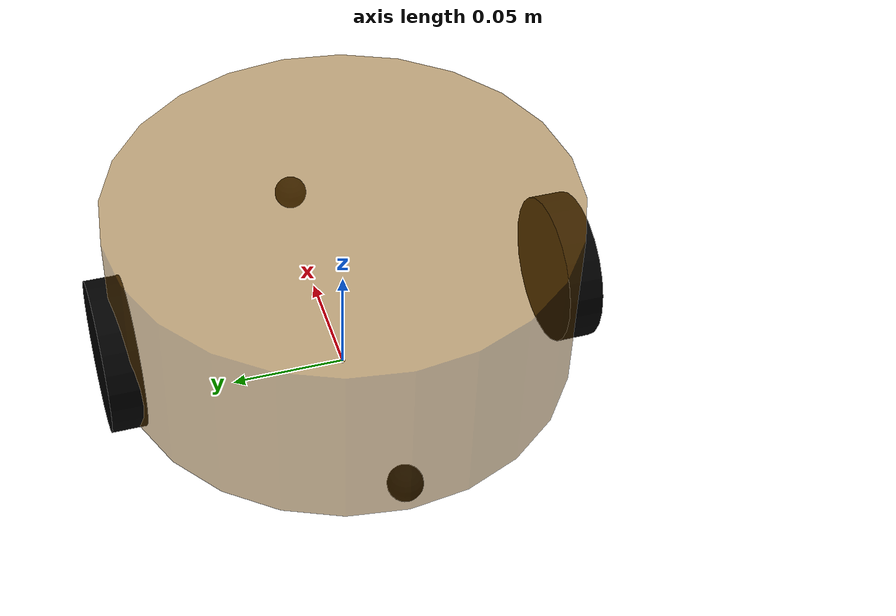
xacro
<robot name="my_base" xmlns:xacro="http://wiki.ros.org/xacro">
    <xacro:include filename="1.xacro" />
    <xacro:property name="PI" value="3.1415926"/>
    <material name="black">
        <color rgba="0.0 0.0 0.0 1.0" />
    </material>
    <xacro:property name="base_footprint_radius" value="0.001" />
    <xacro:property name="base_link_radius" value="0.1" />
    <xacro:property name="base_link_length" value="0.08" />
    <xacro:property name="earth_space" value="0.015" />
    <xacro:property name="base_link_m" value="0.5" />

    <link name="base_footprint">
        <visual>
            <geometry>
                <sphere radius="${base_footprint_radius}" />
            </geometry>
        </visual>
    </link>

    <link name="base_link">
        <visual>
            <geometry>
                <cylinder radius="${base_link_radius}" length="${base_link_length}" />
            </geometry>
            <origin xyz="0 0 0" rpy="0 0 0" />
            <material name="yellow">
                <color rgba="0.5 0.3 0.0 0.5" />
            </material>
        </visual>
        <collision>
            <geometry>
                <cylinder radius="${base_link_radius}" length="${base_link_length}" />
            </geometry>
            <origin xyz="0 0 0" rpy="0 0 0" />
        </collision>

        <xacro:cylinder_inertial_matrix m="${base_link_m}" r="${base_link_radius}" h="${base_link_length}" />
    </link>

    <joint name="base_link2base_footprint" type="fixed">
        <parent link="base_footprint" />
        <child link="base_link" />
        <origin xyz="0 0 ${earth_space + base_link_length / 2 }" />
    </joint>
    <gazebo reference="base_link">
        <material>Gazebo/Yellow</material>
    </gazebo>

    <xacro:property name="wheel_radius" value="0.0325" />
    <xacro:property name="wheel_length" value="0.015" />
    <xacro:property name="wheel_m" value="0.05" />

    <xacro:macro name="add_wheels" params="name flag">
        <link name="${name}_wheel">
            <visual>
                <geometry>
                    <cylinder radius="${wheel_radius}" length="${wheel_length}" />
                </geometry>
                <origin xyz="0.0 0.0 0.0" rpy="${PI / 2} 0 0" />
                <material name="black" />
            </visual>
            <collision>
                <geometry>
                    <cylinder radius="${wheel_radius}" length="${wheel_length}" />
                </geometry>
                <origin xyz="0.0 0.0 0.0" rpy="${PI / 2} 0 0" />
            </collision>
            <xacro:cylinder_inertial_matrix m="${wheel_m}" r="${wheel_radius}" h="${wheel_length}" />
        </link>

        <joint name="${name}_wheel2base_link" type="continuous">
            <parent link="base_link" />
            <child link="${name}_wheel" />
            <origin xyz="0 ${flag * base_link_radius} ${-(earth_space + base_link_length / 2 - wheel_radius)}" />
            <axis xyz="0 1 0" />
        </joint>
        <gazebo reference="${name}_wheel">
            <material>Gazebo/Red</material>
        </gazebo>
    </xacro:macro>

    <xacro:add_wheels name="left" flag="1" />
    <xacro:add_wheels name="right" flag="-1" />
    <xacro:property name="support_wheel_radius" value="0.0075" />
    <xacro:property name="support_wheel_m" value="0.03" />

    <xacro:macro name="add_support_wheel" params="name flag">
        <link name="${name}_wheel">
            <visual>
                <geometry>
                    <sphere radius="${support_wheel_radius}" />
                </geometry>
                <origin xyz="0 0 0" rpy="0 0 0" />
                <material name="black" />
            </visual>
            <collision>
                <geometry>
                    <sphere radius="${support_wheel_radius}" />
                </geometry>
                <origin xyz="0 0 0" rpy="0 0 0" />
            </collision>
            <xacro:sphere_inertial_matrix m="${support_wheel_m}" r="${support_wheel_radius}" />
        </link>

        <joint name="${name}_wheel2base_link" type="continuous">
            <parent link="base_link" />
            <child link="${name}_wheel" />
            <origin xyz="${flag * (base_link_radius - support_wheel_radius)} 0 ${-(base_link_length / 2 - support_wheel_radius)}" />
            <axis xyz="1 1 1" />
        </joint>
        <gazebo reference="${name}_wheel">
            <material>Gazebo/Red</material>
        </gazebo>
    </xacro:macro>

    <xacro:add_support_wheel name="front" flag="1" />
    <xacro:add_support_wheel name="back" flag="-1" />

</robot>

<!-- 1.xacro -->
<robot name="base" xmlns:xacro="http://wiki.ros.org/xacro">

    <xacro:macro name="sphere_inertial_matrix" params="m r">
        <inertial>
            <mass value="${m}" />
            <inertia ixx="${2*m*r*r/5}" ixy="0" ixz="0"
                     iyy="${2*m*r*r/5}" iyz="0"
                     izz="${2*m*r*r/5}" />
        </inertial>
    </xacro:macro>

    <xacro:macro name="cylinder_inertial_matrix" params="m r h">
        <inertial>
            <mass value="${m}" />
            <inertia ixx="${m*(3*r*r+h*h)/12}" ixy="0" ixz="0"
                     iyy="${m*(3*r*r+h*h)/12}" iyz="0"
                     izz="${m*r*r/2}" />
        </inertial>
    </xacro:macro>

    <xacro:macro name="Box_inertial_matrix" params="m l w h">
        <inertial>
            <mass value="${m}" />

            <inertia ixx="${m*(h*h + l*l)/12}" ixy="0" ixz="0"
                     iyy="${m*(w*w + l*l)/12}" iyz="0"
                     izz="${m*(w*w + h*h)/12}" />
        </inertial>
    </xacro:macro>
</robot>
